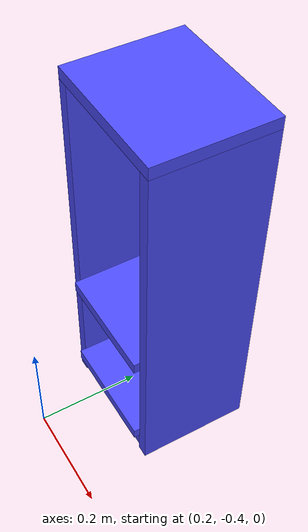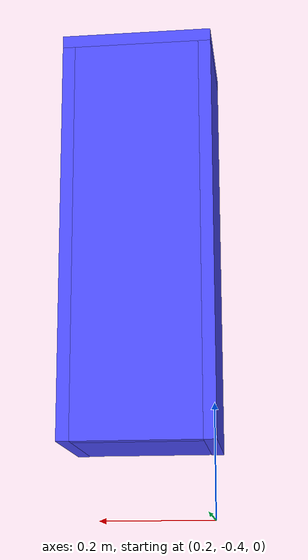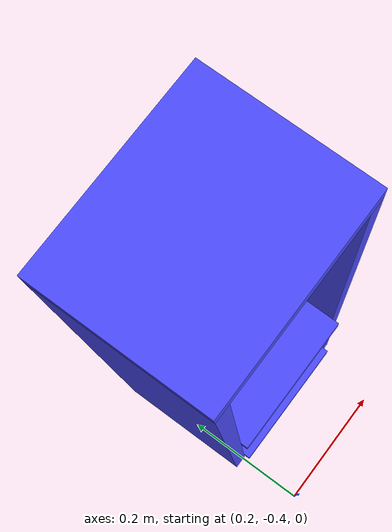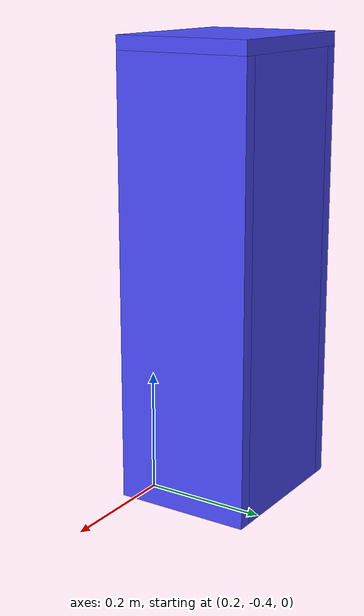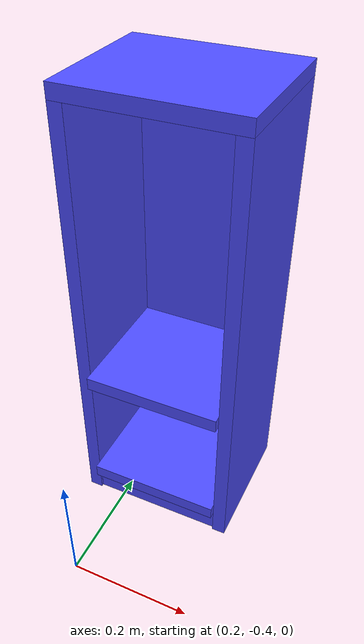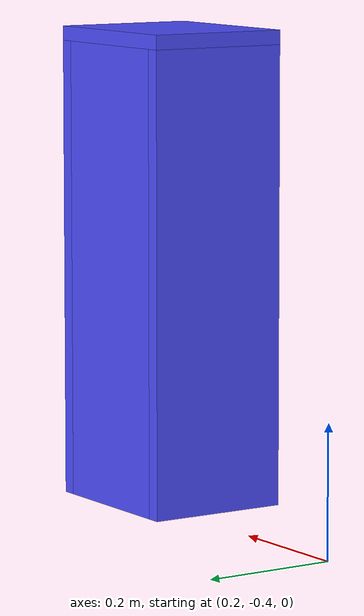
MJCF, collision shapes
<mujoco model="shelf">
    <compiler angle="radian" inertiafromgeom="auto" inertiagrouprange="1 5"/>

    <asset>
        <texture name="T_shelf_wood" type="cube" file="textures/wood1.png"/>

        <material name="shelf_col" rgba="0.3 0.3 1.0 0.5" shininess="0" specular="0"/>
        <material name="shelf_white" rgba=".85 .85 .85 1" shininess="1" reflectance=".7" specular=".5"/>
        <material name="shelf_wood" texture="T_shelf_wood" shininess="1" reflectance="1" specular=".5"/>
    </asset>

    <default>
        <default class="shelf_base">
            <joint armature="0.001" damping="2" limited="true"/>
            <geom conaffinity="0" contype="0" group="1" type="mesh"/>
            <position ctrllimited="true" ctrlrange="0 1.57"/>
            <default class="shelf_viz">
                <geom condim="4" type="mesh"/>
            </default>
            <default class="shelf_col">
                <geom conaffinity="1" condim="3" contype="0" group="4" material="shelf_col" solimp="0.99 0.99 0.01" solref="0.01 1"/>
            </default>
            <default class="block_col">
                <geom conaffinity="1" condim="3" contype="1" group="4" material="shelf_col" solimp="0.99 0.99 0.01" solref="0.01 1"/>
            </default>
            <site type="sphere" size=".01" rgba="0 1 0 1" group="5"/>
        </default>
    </default>

    <asset>
        <mesh file="metaworld/shelf/shelf.stl" name="shelf"/>
        <mesh file="metaworld/shelf/shelf_supports.stl" name="shelf_supports"/>
    </asset>

    <worldbody>
        <body childclass="shelf_base" name="shelf" pos="0.3 -0.2 0.098">
            <geom material="shelf_wood" mesh="shelf" pos="0 -0.015 0.24"/>
            <geom material="shelf_white" mesh="shelf_supports" pos="0 0 0.04"/>
            <geom class="shelf_col" pos="-0.11 0 0.32" size="0.01 0.1 0.32" type="box"/>
            <geom class="shelf_col" pos="0.11 0 0.32" size="0.01 0.1 0.32" type="box"/>
            <geom class="shelf_col" pos="0 0 0.65" size="0.12 0.1 0.01" type="box"/>
            <geom class="shelf_col" pos="0 -0.015 0.24" size="0.1 0.095 0.01" type="box"/>
            <geom class="shelf_col" pos="0 -0.015 0.05" size="0.1 0.095 0.01" type="box"/>
            <geom class="shelf_col" pos="0 0.09 0.32" size="0.1 0.01 0.32" type="box"/>
            <geom class="shelf_col" pos="0.0 -0.008 0.021" size="0.1 0.088 0.021" type="box"/>
            <site name="shelf_goal" pos="0 0 0.3" size="0.02" rgba="0 0.8 0 1" group="5"/>
        </body>
    </worldbody>
</mujoco>
